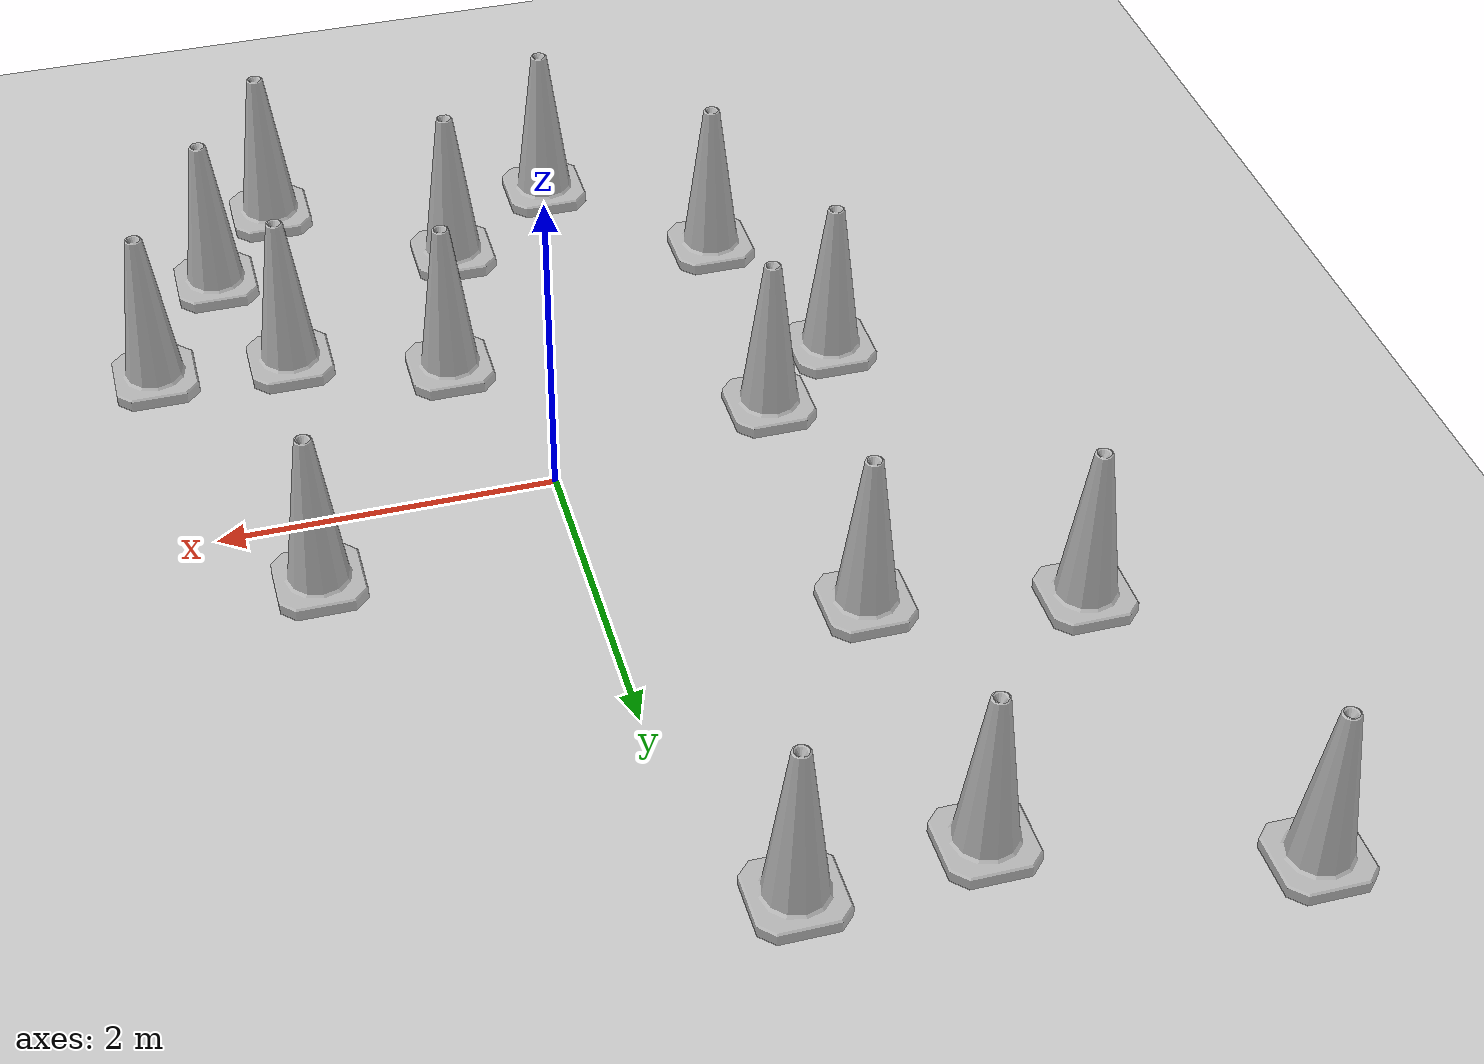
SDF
<sdf version="1.7">
 <world name="default">
  <light name="sun" type="directional">
   <pose>0 0 10 0 -0 0</pose>
   <diffuse>0.8 0.8 0.8 1</diffuse>
   <specular>0.2 0.2 0.2 1</specular>
   <attenuation>
    <range>1000</range>
    <constant>0.9</constant>
    <linear>0.01</linear>
    <quadratic>0.001</quadratic>
   </attenuation>
   <direction>-0.5 0.1 -0.9</direction>
   <spot><inner_angle>0</inner_angle><outer_angle>0</outer_angle><falloff>0</falloff></spot>
  </light>
  <model name="ground_plane">
   <static>1</static>
   <link name="link">
    <collision name="collision">
     <geometry><plane><normal>0 0 1</normal><size>100 100</size></plane></geometry>
     <surface><friction><ode><mu>100</mu><mu2>50</mu2></ode></friction></surface>
    </collision>
    <visual name="visual">
     <cast_shadows>0</cast_shadows>
     <geometry><plane><normal>0 0 1</normal><size>100 100</size></plane></geometry>
     <material>
      <script><uri>file://media/materials/scripts/gazebo.material</uri><name>Gazebo/Grey</name></script>
     </material>
    </visual>
   </link>
  </model>
  <gravity>0 0 -9.8</gravity>
  <magnetic_field>6e-06 2.3e-05 -4.2e-05</magnetic_field>
  <atmosphere type="adiabatic"/>
  <physics type="ode">
   <max_step_size>0.001</max_step_size>
   <real_time_factor>1</real_time_factor>
   <real_time_update_rate>1000</real_time_update_rate>
  </physics>
  <scene><ambient>0.4 0.4 0.4 1</ambient><background>0.7 0.7 0.7 1</background><shadows>1</shadows></scene>
  <audio><device>default</device></audio>
  <spherical_coordinates>
   <surface_model>EARTH_WGS84</surface_model>
   <latitude_deg>0</latitude_deg>
   <longitude_deg>0</longitude_deg>
   <elevation>0</elevation>
   <heading_deg>0</heading_deg>
  </spherical_coordinates>
  <model name="Construction Cone">
   <link name="link">
    <collision name="collision">
     <geometry>
      <mesh><scale>10 10 10</scale><uri>model://construction_cone/meshes/construction_cone.dae</uri></mesh>
     </geometry>
    </collision>
    <visual name="visual">
     <geometry>
      <mesh><scale>10 10 10</scale><uri>model://construction_cone/meshes/construction_cone.dae</uri></mesh>
     </geometry>
    </visual>
    <inertial>
     <inertia><ixx>1</ixx><ixy>0</ixy><ixz>0</ixz><iyy>1</iyy><iyz>0</iyz><izz>1</izz></inertia>
     <mass>1</mass>
    </inertial>
   </link>
   <pose>0.395628 -1.18803 -0 0 -1e-06 0</pose>
  </model>
  <model name="Construction Cone_clone">
   <link name="link">
    <collision name="collision">
     <geometry>
      <mesh><scale>10 10 10</scale><uri>model://construction_cone/meshes/construction_cone.dae</uri></mesh>
     </geometry>
    </collision>
    <visual name="visual">
     <geometry>
      <mesh><scale>10 10 10</scale><uri>model://construction_cone/meshes/construction_cone.dae</uri></mesh>
     </geometry>
    </visual>
    <inertial>
     <inertia><ixx>1</ixx><ixy>0</ixy><ixz>0</ixz><iyy>1</iyy><iyz>0</iyz><izz>1</izz></inertia>
     <mass>1</mass>
    </inertial>
   </link>
   <pose>1.48898 0.51666 -1e-05 -1e-06 0 0</pose>
  </model>
  <model name="Construction Cone_clone_0">
   <link name="link">
    <collision name="collision">
     <geometry>
      <mesh><scale>10 10 10</scale><uri>model://construction_cone/meshes/construction_cone.dae</uri></mesh>
     </geometry>
    </collision>
    <visual name="visual">
     <geometry>
      <mesh><scale>10 10 10</scale><uri>model://construction_cone/meshes/construction_cone.dae</uri></mesh>
     </geometry>
    </visual>
    <inertial>
     <inertia><ixx>1</ixx><ixy>0</ixy><ixz>0</ixz><iyy>1</iyy><iyz>0</iyz><izz>1</izz></inertia>
     <mass>1</mass>
    </inertial>
   </link>
   <pose>2.17613 -1.56229 -0 0 -0 0</pose>
  </model>
  <model name="Construction Cone_clone_1">
   <link name="link">
    <collision name="collision">
     <geometry>
      <mesh><scale>10 10 10</scale><uri>model://construction_cone/meshes/construction_cone.dae</uri></mesh>
     </geometry>
    </collision>
    <visual name="visual">
     <geometry>
      <mesh><scale>10 10 10</scale><uri>model://construction_cone/meshes/construction_cone.dae</uri></mesh>
     </geometry>
    </visual>
    <inertial>
     <inertia><ixx>1</ixx><ixy>0</ixy><ixz>0</ixz><iyy>1</iyy><iyz>0</iyz><izz>1</izz></inertia>
     <mass>1</mass>
    </inertial>
   </link>
   <pose>0.140534 -2.35356 -6e-06 -4e-06 0 0</pose>
  </model>
  <model name="Construction Cone_clone_2">
   <link name="link">
    <collision name="collision">
     <geometry>
      <mesh><scale>10 10 10</scale><uri>model://construction_cone/meshes/construction_cone.dae</uri></mesh>
     </geometry>
    </collision>
    <visual name="visual">
     <geometry>
      <mesh><scale>10 10 10</scale><uri>model://construction_cone/meshes/construction_cone.dae</uri></mesh>
     </geometry>
    </visual>
    <inertial>
     <inertia><ixx>1</ixx><ixy>0</ixy><ixz>0</ixz><iyy>1</iyy><iyz>0</iyz><izz>1</izz></inertia>
     <mass>1</mass>
    </inertial>
   </link>
   <pose>1.68481 -2.44714 -0 0 -0 0</pose>
  </model>
  <model name="Construction Cone_clone_3">
   <link name="link">
    <collision name="collision">
     <geometry>
      <mesh><scale>10 10 10</scale><uri>model://construction_cone/meshes/construction_cone.dae</uri></mesh>
     </geometry>
    </collision>
    <visual name="visual">
     <geometry>
      <mesh><scale>10 10 10</scale><uri>model://construction_cone/meshes/construction_cone.dae</uri></mesh>
     </geometry>
    </visual>
    <inertial>
     <inertia><ixx>1</ixx><ixy>0</ixy><ixz>0</ixz><iyy>1</iyy><iyz>0</iyz><izz>1</izz></inertia>
     <mass>1</mass>
    </inertial>
   </link>
   <pose>-1.43991 1.49181 -9e-06 1e-06 -1e-06 0</pose>
  </model>
  <model name="Construction Cone_clone_4">
   <link name="link">
    <collision name="collision">
     <geometry>
      <mesh><scale>10 10 10</scale><uri>model://construction_cone/meshes/construction_cone.dae</uri></mesh>
     </geometry>
    </collision>
    <visual name="visual">
     <geometry>
      <mesh><scale>10 10 10</scale><uri>model://construction_cone/meshes/construction_cone.dae</uri></mesh>
     </geometry>
    </visual>
    <inertial>
     <inertia><ixx>1</ixx><ixy>0</ixy><ixz>0</ixz><iyy>1</iyy><iyz>0</iyz><izz>1</izz></inertia>
     <mass>1</mass>
    </inertial>
   </link>
   <pose>-1.41808 -0.323834 0 -0 -0 -0</pose>
  </model>
  <model name="Construction Cone_clone_5">
   <link name="link">
    <collision name="collision">
     <geometry>
      <mesh><scale>10 10 10</scale><uri>model://construction_cone/meshes/construction_cone.dae</uri></mesh>
     </geometry>
    </collision>
    <visual name="visual">
     <geometry>
      <mesh><scale>10 10 10</scale><uri>model://construction_cone/meshes/construction_cone.dae</uri></mesh>
     </geometry>
    </visual>
    <inertial>
     <inertia><ixx>1</ixx><ixy>0</ixy><ixz>0</ixz><iyy>1</iyy><iyz>0</iyz><izz>1</izz></inertia>
     <mass>1</mass>
    </inertial>
   </link>
   <pose>1.3448 -1.50994 -0 0 -0 0</pose>
  </model>
  <model name="Construction Cone_clone_6">
   <link name="link">
    <collision name="collision">
     <geometry>
      <mesh><scale>10 10 10</scale><uri>model://construction_cone/meshes/construction_cone.dae</uri></mesh>
     </geometry>
    </collision>
    <visual name="visual">
     <geometry>
      <mesh><scale>10 10 10</scale><uri>model://construction_cone/meshes/construction_cone.dae</uri></mesh>
     </geometry>
    </visual>
    <inertial>
     <inertia><ixx>1</ixx><ixy>0</ixy><ixz>0</ixz><iyy>1</iyy><iyz>0</iyz><izz>1</izz></inertia>
     <mass>1</mass>
    </inertial>
   </link>
   <pose>-1.47419 3.31543 -4e-06 4e-06 -1e-06 0</pose>
  </model>
  <model name="Construction Cone_clone_7">
   <link name="link">
    <collision name="collision">
     <geometry>
      <mesh><scale>10 10 10</scale><uri>model://construction_cone/meshes/construction_cone.dae</uri></mesh>
     </geometry>
    </collision>
    <visual name="visual">
     <geometry>
      <mesh><scale>10 10 10</scale><uri>model://construction_cone/meshes/construction_cone.dae</uri></mesh>
     </geometry>
    </visual>
    <inertial>
     <inertia><ixx>1</ixx><ixy>0</ixy><ixz>0</ixz><iyy>1</iyy><iyz>0</iyz><izz>1</izz></inertia>
     <mass>1</mass>
    </inertial>
   </link>
   <pose>-0.438471 3.39776 -0 0 -0 0</pose>
  </model>
  <model name="Construction Cone_clone_8">
   <link name="link">
    <collision name="collision">
     <geometry>
      <mesh><scale>10 10 10</scale><uri>model://construction_cone/meshes/construction_cone.dae</uri></mesh>
     </geometry>
    </collision>
    <visual name="visual">
     <geometry>
      <mesh><scale>10 10 10</scale><uri>model://construction_cone/meshes/construction_cone.dae</uri></mesh>
     </geometry>
    </visual>
    <inertial>
     <inertia><ixx>1</ixx><ixy>0</ixy><ixz>0</ixz><iyy>1</iyy><iyz>0</iyz><izz>1</izz></inertia>
     <mass>1</mass>
    </inertial>
   </link>
   <pose>-3.06698 3.85389 -0 0 -0 0</pose>
  </model>
  <model name="Construction Cone_clone_9">
   <link name="link">
    <collision name="collision">
     <geometry>
      <mesh><scale>10 10 10</scale><uri>model://construction_cone/meshes/construction_cone.dae</uri></mesh>
     </geometry>
    </collision>
    <visual name="visual">
     <geometry>
      <mesh><scale>10 10 10</scale><uri>model://construction_cone/meshes/construction_cone.dae</uri></mesh>
     </geometry>
    </visual>
    <inertial>
     <inertia><ixx>1</ixx><ixy>0</ixy><ixz>0</ixz><iyy>1</iyy><iyz>0</iyz><izz>1</izz></inertia>
     <mass>1</mass>
    </inertial>
   </link>
   <pose>-2.6497 1.75882 -1e-05 0 -0 0</pose>
  </model>
  <model name="Construction Cone_clone_10">
   <link name="link">
    <collision name="collision">
     <geometry>
      <mesh><scale>10 10 10</scale><uri>model://construction_cone/meshes/construction_cone.dae</uri></mesh>
     </geometry>
    </collision>
    <visual name="visual">
     <geometry>
      <mesh><scale>10 10 10</scale><uri>model://construction_cone/meshes/construction_cone.dae</uri></mesh>
     </geometry>
    </visual>
    <inertial>
     <inertia><ixx>1</ixx><ixy>0</ixy><ixz>0</ixz><iyy>1</iyy><iyz>0</iyz><izz>1</izz></inertia>
     <mass>1</mass>
    </inertial>
   </link>
   <pose>-1.95189 -0.765965 0 -0 -0 -0</pose>
  </model>
  <model name="Construction Cone_clone_11">
   <link name="link">
    <collision name="collision">
     <geometry>
      <mesh><scale>10 10 10</scale><uri>model://construction_cone/meshes/construction_cone.dae</uri></mesh>
     </geometry>
    </collision>
    <visual name="visual">
     <geometry>
      <mesh><scale>10 10 10</scale><uri>model://construction_cone/meshes/construction_cone.dae</uri></mesh>
     </geometry>
    </visual>
    <inertial>
     <inertia><ixx>1</ixx><ixy>0</ixy><ixz>0</ixz><iyy>1</iyy><iyz>0</iyz><izz>1</izz></inertia>
     <mass>1</mass>
    </inertial>
   </link>
   <pose>-1.51769 -2.00114 0 -0 -0 -0</pose>
  </model>
  <model name="Construction Cone_clone_12">
   <link name="link">
    <collision name="collision">
     <geometry>
      <mesh><scale>10 10 10</scale><uri>model://construction_cone/meshes/construction_cone.dae</uri></mesh>
     </geometry>
    </collision>
    <visual name="visual">
     <geometry>
      <mesh><scale>10 10 10</scale><uri>model://construction_cone/meshes/construction_cone.dae</uri></mesh>
     </geometry>
    </visual>
    <inertial>
     <inertia><ixx>1</ixx><ixy>0</ixy><ixz>0</ixz><iyy>1</iyy><iyz>0</iyz><izz>1</izz></inertia>
     <mass>1</mass>
    </inertial>
   </link>
   <pose>1.23236 -3.12066 -0 0 -0 0</pose>
  </model>
  <model name="Construction Cone_clone_13">
   <link name="link">
    <collision name="collision">
     <geometry>
      <mesh><scale>10 10 10</scale><uri>model://construction_cone/meshes/construction_cone.dae</uri></mesh>
     </geometry>
    </collision>
    <visual name="visual">
     <geometry>
      <mesh><scale>10 10 10</scale><uri>model://construction_cone/meshes/construction_cone.dae</uri></mesh>
     </geometry>
    </visual>
    <inertial>
     <inertia><ixx>1</ixx><ixy>0</ixy><ixz>0</ixz><iyy>1</iyy><iyz>0</iyz><izz>1</izz></inertia>
     <mass>1</mass>
    </inertial>
   </link>
   <pose>-0.59971 -2.91254 -0 0 -1e-06 0</pose>
  </model>
 </world>
</sdf>
